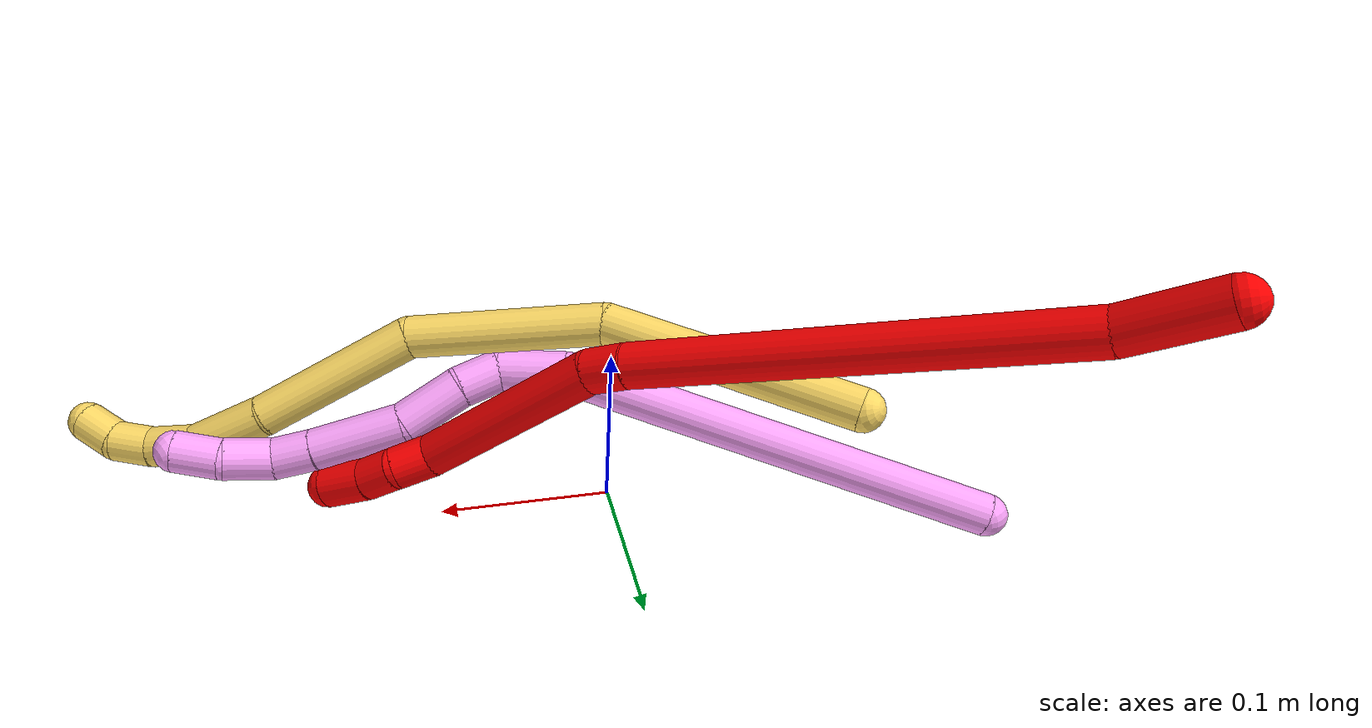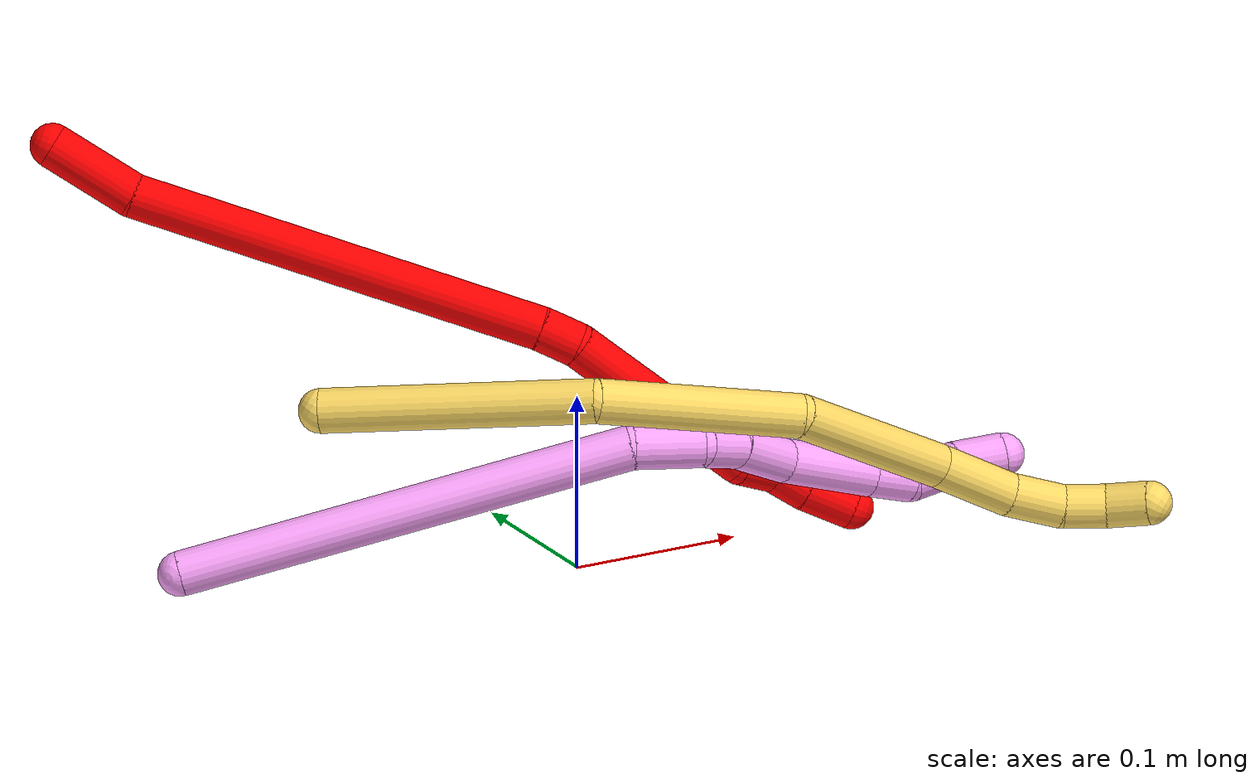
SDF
<sdf version="1.7">
 <world name="default">
  <model name="2">
   <static>0</static>
   <link name="2">
    <collision name="collision-cylinder-e_1_1_4">
     <pose>0.001575 0.00493 -0.025423 -2.95006 0.060754 -0.612724</pose>
     <geometry><cylinder><radius>0.0125</radius><length>0.051888</length></cylinder></geometry>
     <surface>
      <friction><ode><mu>1.16</mu><mu2>1.16</mu2><slip1>0</slip1><slip2>0</slip2></ode></friction>
      <contact><ode><kp>1e+06</kp><kd>1</kd><max_vel>0</max_vel><min_depth>0.001</min_depth></ode></contact>
     </surface>
    </collision>
    <visual name="visual-cylinder-e_1_1_4">
     <pose>0.001575 0.00493 -0.025423 -2.95006 0.060754 -0.612724</pose>
     <geometry><cylinder><radius>0.0125</radius><length>0.051888</length></cylinder></geometry>
     <material><ambient>1 0 0 1</ambient></material>
    </visual>
    <collision name="collision-cylinder-e_2_4_5">
     <pose>-0.008923 0.011453 -0.168391 -3.12804 -0.102345 2.87845</pose>
     <geometry><cylinder><radius>0.0125</radius><length>0.23635</length></cylinder></geometry>
     <surface>
      <friction><ode><mu>1.16</mu><mu2>1.16</mu2><slip1>0</slip1><slip2>0</slip2></ode></friction>
      <contact><ode><kp>1e+06</kp><kd>1</kd><max_vel>0</max_vel><min_depth>0.001</min_depth></ode></contact>
     </surface>
    </collision>
    <visual name="visual-cylinder-e_2_4_5">
     <pose>-0.008923 0.011453 -0.168391 -3.12804 -0.102345 2.87845</pose>
     <geometry><cylinder><radius>0.0125</radius><length>0.23635</length></cylinder></geometry>
     <material><ambient>1 0 0 1</ambient></material>
    </visual>
    <collision name="collision-cylinder-e_3_5_6">
     <pose>-0.021373 0.014119 -0.297284 -3.04737 -0.033042 0.67415</pose>
     <geometry><cylinder><radius>0.0125</radius><length>0.022807</length></cylinder></geometry>
     <surface>
      <friction><ode><mu>1.16</mu><mu2>1.16</mu2><slip1>0</slip1><slip2>0</slip2></ode></friction>
      <contact><ode><kp>1e+06</kp><kd>1</kd><max_vel>0</max_vel><min_depth>0.001</min_depth></ode></contact>
     </surface>
    </collision>
    <visual name="visual-cylinder-e_3_5_6">
     <pose>-0.021373 0.014119 -0.297284 -3.04737 -0.033042 0.67415</pose>
     <geometry><cylinder><radius>0.0125</radius><length>0.022807</length></cylinder></geometry>
     <material><ambient>1 0 0 1</ambient></material>
    </visual>
    <collision name="collision-cylinder-e_4_6_7">
     <pose>-0.006941 0.022004 -0.364514 -3.02028 0.257228 -2.26357</pose>
     <geometry><cylinder><radius>0.0125</radius><length>0.116425</length></cylinder></geometry>
     <surface>
      <friction><ode><mu>1.16</mu><mu2>1.16</mu2><slip1>0</slip1><slip2>0</slip2></ode></friction>
      <contact><ode><kp>1e+06</kp><kd>1</kd><max_vel>0</max_vel><min_depth>0.001</min_depth></ode></contact>
     </surface>
    </collision>
    <visual name="visual-cylinder-e_4_6_7">
     <pose>-0.006941 0.022004 -0.364514 -3.02028 0.257228 -2.26357</pose>
     <geometry><cylinder><radius>0.0125</radius><length>0.116425</length></cylinder></geometry>
     <material><ambient>1 0 0 1</ambient></material>
    </visual>
    <collision name="collision-cylinder-e_5_7_8">
     <pose>0.010179 0.025332 -0.431047 2.8254 0.20332 1.13843</pose>
     <geometry><cylinder><radius>0.0125</radius><length>0.022881</length></cylinder></geometry>
     <surface>
      <friction><ode><mu>1.16</mu><mu2>1.16</mu2><slip1>0</slip1><slip2>0</slip2></ode></friction>
      <contact><ode><kp>1e+06</kp><kd>1</kd><max_vel>0</max_vel><min_depth>0.001</min_depth></ode></contact>
     </surface>
    </collision>
    <visual name="visual-cylinder-e_5_7_8">
     <pose>0.010179 0.025332 -0.431047 2.8254 0.20332 1.13843</pose>
     <geometry><cylinder><radius>0.0125</radius><length>0.022881</length></cylinder></geometry>
     <material><ambient>1 0 0 1</ambient></material>
    </visual>
    <collision name="collision-cylinder-e_6_8_9">
     <pose>0.014208 0.022586 -0.452225 -3.0716 0.161458 -2.32478</pose>
     <geometry><cylinder><radius>0.0125</radius><length>0.021388</length></cylinder></geometry>
     <surface>
      <friction><ode><mu>1.16</mu><mu2>1.16</mu2><slip1>0</slip1><slip2>0</slip2></ode></friction>
      <contact><ode><kp>1e+06</kp><kd>1</kd><max_vel>0</max_vel><min_depth>0.001</min_depth></ode></contact>
     </surface>
    </collision>
    <visual name="visual-cylinder-e_6_8_9">
     <pose>0.014208 0.022586 -0.452225 -3.0716 0.161458 -2.32478</pose>
     <geometry><cylinder><radius>0.0125</radius><length>0.021388</length></cylinder></geometry>
     <material><ambient>1 0 0 1</ambient></material>
    </visual>
    <collision name="collision-cylinder-e_7_9_2">
     <pose>0.016367 0.023273 -0.476878 3.13794 0.031109 2.90801</pose>
     <geometry><cylinder><radius>0.0125</radius><length>0.028261</length></cylinder></geometry>
     <surface>
      <friction><ode><mu>1.16</mu><mu2>1.16</mu2><slip1>0</slip1><slip2>0</slip2></ode></friction>
      <contact><ode><kp>1e+06</kp><kd>1</kd><max_vel>0</max_vel><min_depth>0.001</min_depth></ode></contact>
     </surface>
    </collision>
    <visual name="visual-cylinder-e_7_9_2">
     <pose>0.016367 0.023273 -0.476878 3.13794 0.031109 2.90801</pose>
     <geometry><cylinder><radius>0.0125</radius><length>0.028261</length></cylinder></geometry>
     <material><ambient>1 0 0 1</ambient></material>
    </visual>
    <collision name="collision-sphere-2">
     <pose>0.016806 0.023221 -0.491001 0 -0 0</pose>
     <geometry><sphere><radius>0.0125</radius></sphere></geometry>
     <surface>
      <friction><ode><mu>1.16</mu><mu2>1.16</mu2><slip1>0</slip1><slip2>0</slip2></ode></friction>
      <contact><ode><kp>1e+06</kp><kd>1</kd><max_vel>0</max_vel><min_depth>0.001</min_depth></ode></contact>
     </surface>
    </collision>
    <visual name="visual-sphere-2">
     <pose>0.016806 0.023221 -0.491001 0 -0 0</pose>
     <geometry><sphere><radius>0.0125</radius></sphere></geometry>
     <material><ambient>1 0 0 1</ambient></material>
    </visual>
    <collision name="collision-sphere-9">
     <pose>0.015927 0.023325 -0.462754 0 -0 0</pose>
     <geometry><sphere><radius>0.0125</radius></sphere></geometry>
     <surface>
      <friction><ode><mu>1.16</mu><mu2>1.16</mu2><slip1>0</slip1><slip2>0</slip2></ode></friction>
      <contact><ode><kp>1e+06</kp><kd>1</kd><max_vel>0</max_vel><min_depth>0.001</min_depth></ode></contact>
     </surface>
    </collision>
    <visual name="visual-sphere-9">
     <pose>0.015927 0.023325 -0.462754 0 -0 0</pose>
     <geometry><sphere><radius>0.0125</radius></sphere></geometry>
     <material><ambient>1 0 0 1</ambient></material>
    </visual>
    <collision name="collision-sphere-4">
     <pose>0.00315 0.009859 -0.050845 0 -0 0</pose>
     <geometry><sphere><radius>0.0125</radius></sphere></geometry>
     <surface>
      <friction><ode><mu>1.16</mu><mu2>1.16</mu2><slip1>0</slip1><slip2>0</slip2></ode></friction>
      <contact><ode><kp>1e+06</kp><kd>1</kd><max_vel>0</max_vel><min_depth>0.001</min_depth></ode></contact>
     </surface>
    </collision>
    <visual name="visual-sphere-4">
     <pose>0.00315 0.009859 -0.050845 0 -0 0</pose>
     <geometry><sphere><radius>0.0125</radius></sphere></geometry>
     <material><ambient>1 0 0 1</ambient></material>
    </visual>
    <collision name="collision-sphere-1">
     <geometry><sphere><radius>0.0125</radius></sphere></geometry>
     <surface>
      <friction><ode><mu>1.16</mu><mu2>1.16</mu2><slip1>0</slip1><slip2>0</slip2></ode></friction>
      <contact><ode><kp>1e+06</kp><kd>1</kd><max_vel>0</max_vel><min_depth>0.001</min_depth></ode></contact>
     </surface>
    </collision>
    <visual name="visual-sphere-1">
     <geometry><sphere><radius>0.0125</radius></sphere></geometry>
     <material><ambient>1 0 0 1</ambient></material>
    </visual>
    <collision name="collision-sphere-8">
     <pose>0.012489 0.021848 -0.441696 0 -0 0</pose>
     <geometry><sphere><radius>0.0125</radius></sphere></geometry>
     <surface>
      <friction><ode><mu>1.16</mu><mu2>1.16</mu2><slip1>0</slip1><slip2>0</slip2></ode></friction>
      <contact><ode><kp>1e+06</kp><kd>1</kd><max_vel>0</max_vel><min_depth>0.001</min_depth></ode></contact>
     </surface>
    </collision>
    <visual name="visual-sphere-8">
     <pose>0.012489 0.021848 -0.441696 0 -0 0</pose>
     <geometry><sphere><radius>0.0125</radius></sphere></geometry>
     <material><ambient>1 0 0 1</ambient></material>
    </visual>
    <collision name="collision-sphere-5">
     <pose>-0.020997 0.013047 -0.285937 0 -0 0</pose>
     <geometry><sphere><radius>0.0125</radius></sphere></geometry>
     <surface>
      <friction><ode><mu>1.16</mu><mu2>1.16</mu2><slip1>0</slip1><slip2>0</slip2></ode></friction>
      <contact><ode><kp>1e+06</kp><kd>1</kd><max_vel>0</max_vel><min_depth>0.001</min_depth></ode></contact>
     </surface>
    </collision>
    <visual name="visual-sphere-5">
     <pose>-0.020997 0.013047 -0.285937 0 -0 0</pose>
     <geometry><sphere><radius>0.0125</radius></sphere></geometry>
     <material><ambient>1 0 0 1</ambient></material>
    </visual>
    <collision name="collision-sphere-6">
     <pose>-0.02175 0.015191 -0.30863 0 -0 0</pose>
     <geometry><sphere><radius>0.0125</radius></sphere></geometry>
     <surface>
      <friction><ode><mu>1.16</mu><mu2>1.16</mu2><slip1>0</slip1><slip2>0</slip2></ode></friction>
      <contact><ode><kp>1e+06</kp><kd>1</kd><max_vel>0</max_vel><min_depth>0.001</min_depth></ode></contact>
     </surface>
    </collision>
    <visual name="visual-sphere-6">
     <pose>-0.02175 0.015191 -0.30863 0 -0 0</pose>
     <geometry><sphere><radius>0.0125</radius></sphere></geometry>
     <material><ambient>1 0 0 1</ambient></material>
    </visual>
    <collision name="collision-sphere-7">
     <pose>0.007869 0.028816 -0.420398 0 -0 0</pose>
     <geometry><sphere><radius>0.0125</radius></sphere></geometry>
     <surface>
      <friction><ode><mu>1.16</mu><mu2>1.16</mu2><slip1>0</slip1><slip2>0</slip2></ode></friction>
      <contact><ode><kp>1e+06</kp><kd>1</kd><max_vel>0</max_vel><min_depth>0.001</min_depth></ode></contact>
     </surface>
    </collision>
    <visual name="visual-sphere-7">
     <pose>0.007869 0.028816 -0.420398 0 -0 0</pose>
     <geometry><sphere><radius>0.0125</radius></sphere></geometry>
     <material><ambient>1 0 0 1</ambient></material>
    </visual>
    <inertial>
     <pose>-0.004647 0.015134 -0.246698 0 -0 0</pose>
     <mass>0.5</mass>
     <inertia><ixx>-0.000959</ixx><ixy>0</ixy><ixz>0</ixz><iyy>0.001334</iyy><iyz>0</iyz><izz>6e-06</izz></inertia>
    </inertial>
   </link>
   <pose>-0.226764 0.185387 0.227986 -0.951174 0.840828 1.59629</pose>
  </model>
  <model name="4">
   <static>0</static>
   <link name="4">
    <collision name="collision-cylinder-e_1_1_4">
     <pose>0.079052 -0.067173 0.075465 0.727329 0.663949 0.260915</pose>
     <geometry><cylinder><radius>0.0125</radius><length>0.256566</length></cylinder></geometry>
     <surface>
      <friction><ode><mu>1.16</mu><mu2>1.16</mu2><slip1>0</slip1><slip2>0</slip2></ode></friction>
      <contact><ode><kp>1e+06</kp><kd>1</kd><max_vel>0</max_vel><min_depth>0.001</min_depth></ode></contact>
     </surface>
    </collision>
    <visual name="visual-cylinder-e_1_1_4">
     <pose>0.079052 -0.067173 0.075465 0.727329 0.663949 0.260915</pose>
     <geometry><cylinder><radius>0.0125</radius><length>0.256566</length></cylinder></geometry>
     <material><ambient>1 0.65098 0.996078 1</ambient></material>
    </visual>
    <collision name="collision-cylinder-e_2_4_5">
     <pose>0.17161 -0.139218 0.164559 0.343323 0.750873 0.136447</pose>
     <geometry><cylinder><radius>0.0125</radius><length>0.039591</length></cylinder></geometry>
     <surface>
      <friction><ode><mu>1.16</mu><mu2>1.16</mu2><slip1>0</slip1><slip2>0</slip2></ode></friction>
      <contact><ode><kp>1e+06</kp><kd>1</kd><max_vel>0</max_vel><min_depth>0.001</min_depth></ode></contact>
     </surface>
    </collision>
    <visual name="visual-cylinder-e_2_4_5">
     <pose>0.17161 -0.139218 0.164559 0.343323 0.750873 0.136447</pose>
     <geometry><cylinder><radius>0.0125</radius><length>0.039591</length></cylinder></geometry>
     <material><ambient>1 0.65098 0.996078 1</ambient></material>
    </visual>
    <collision name="collision-cylinder-e_3_5_6">
     <pose>0.189829 -0.143136 0.18993 -0.081044 0.380511 -0.015616</pose>
     <geometry><cylinder><radius>0.0125</radius><length>0.025379</length></cylinder></geometry>
     <surface>
      <friction><ode><mu>1.16</mu><mu2>1.16</mu2><slip1>0</slip1><slip2>0</slip2></ode></friction>
      <contact><ode><kp>1e+06</kp><kd>1</kd><max_vel>0</max_vel><min_depth>0.001</min_depth></ode></contact>
     </surface>
    </collision>
    <visual name="visual-cylinder-e_3_5_6">
     <pose>0.189829 -0.143136 0.18993 -0.081044 0.380511 -0.015616</pose>
     <geometry><cylinder><radius>0.0125</radius><length>0.025379</length></cylinder></geometry>
     <material><ambient>1 0.65098 0.996078 1</ambient></material>
    </visual>
    <collision name="collision-cylinder-e_4_6_7">
     <pose>0.202052 -0.137038 0.218936 -0.289593 0.39503 -0.058346</pose>
     <geometry><cylinder><radius>0.0125</radius><length>0.039032</length></cylinder></geometry>
     <surface>
      <friction><ode><mu>1.16</mu><mu2>1.16</mu2><slip1>0</slip1><slip2>0</slip2></ode></friction>
      <contact><ode><kp>1e+06</kp><kd>1</kd><max_vel>0</max_vel><min_depth>0.001</min_depth></ode></contact>
     </surface>
    </collision>
    <visual name="visual-cylinder-e_4_6_7">
     <pose>0.202052 -0.137038 0.218936 -0.289593 0.39503 -0.058346</pose>
     <geometry><cylinder><radius>0.0125</radius><length>0.039032</length></cylinder></geometry>
     <material><ambient>1 0.65098 0.996078 1</ambient></material>
    </visual>
    <collision name="collision-cylinder-e_5_7_8">
     <pose>0.226168 -0.130706 0.258539 -0.053152 0.638524 -0.017574</pose>
     <geometry><cylinder><radius>0.0125</radius><length>0.05572</length></cylinder></geometry>
     <surface>
      <friction><ode><mu>1.16</mu><mu2>1.16</mu2><slip1>0</slip1><slip2>0</slip2></ode></friction>
      <contact><ode><kp>1e+06</kp><kd>1</kd><max_vel>0</max_vel><min_depth>0.001</min_depth></ode></contact>
     </surface>
    </collision>
    <visual name="visual-cylinder-e_5_7_8">
     <pose>0.226168 -0.130706 0.258539 -0.053152 0.638524 -0.017574</pose>
     <geometry><cylinder><radius>0.0125</radius><length>0.05572</length></cylinder></geometry>
     <material><ambient>1 0.65098 0.996078 1</ambient></material>
    </visual>
    <collision name="collision-cylinder-e_6_8_9">
     <pose>0.250729 -0.129599 0.290788 0.00821 0.676444 0.002888</pose>
     <geometry><cylinder><radius>0.0125</radius><length>0.025417</length></cylinder></geometry>
     <surface>
      <friction><ode><mu>1.16</mu><mu2>1.16</mu2><slip1>0</slip1><slip2>0</slip2></ode></friction>
      <contact><ode><kp>1e+06</kp><kd>1</kd><max_vel>0</max_vel><min_depth>0.001</min_depth></ode></contact>
     </surface>
    </collision>
    <visual name="visual-cylinder-e_6_8_9">
     <pose>0.250729 -0.129599 0.290788 0.00821 0.676444 0.002888</pose>
     <geometry><cylinder><radius>0.0125</radius><length>0.025417</length></cylinder></geometry>
     <material><ambient>1 0.65098 0.996078 1</ambient></material>
    </visual>
    <collision name="collision-cylinder-e_7_9_10">
     <pose>0.264315 -0.134815 0.313702 0.376044 0.382819 0.073708</pose>
     <geometry><cylinder><radius>0.0125</radius><length>0.030145</length></cylinder></geometry>
     <surface>
      <friction><ode><mu>1.16</mu><mu2>1.16</mu2><slip1>0</slip1><slip2>0</slip2></ode></friction>
      <contact><ode><kp>1e+06</kp><kd>1</kd><max_vel>0</max_vel><min_depth>0.001</min_depth></ode></contact>
     </surface>
    </collision>
    <visual name="visual-cylinder-e_7_9_10">
     <pose>0.264315 -0.134815 0.313702 0.376044 0.382819 0.073708</pose>
     <geometry><cylinder><radius>0.0125</radius><length>0.030145</length></cylinder></geometry>
     <material><ambient>1 0.65098 0.996078 1</ambient></material>
    </visual>
    <collision name="collision-cylinder-e_8_10_2">
     <pose>0.278635 -0.145416 0.336335 0.516364 0.665489 0.182022</pose>
     <geometry><cylinder><radius>0.0125</radius><length>0.028149</length></cylinder></geometry>
     <surface>
      <friction><ode><mu>1.16</mu><mu2>1.16</mu2><slip1>0</slip1><slip2>0</slip2></ode></friction>
      <contact><ode><kp>1e+06</kp><kd>1</kd><max_vel>0</max_vel><min_depth>0.001</min_depth></ode></contact>
     </surface>
    </collision>
    <visual name="visual-cylinder-e_8_10_2">
     <pose>0.278635 -0.145416 0.336335 0.516364 0.665489 0.182022</pose>
     <geometry><cylinder><radius>0.0125</radius><length>0.028149</length></cylinder></geometry>
     <material><ambient>1 0.65098 0.996078 1</ambient></material>
    </visual>
    <collision name="collision-sphere-2">
     <pose>0.287325 -0.150882 0.345962 0 -0 0</pose>
     <geometry><sphere><radius>0.0125</radius></sphere></geometry>
     <surface>
      <friction><ode><mu>1.16</mu><mu2>1.16</mu2><slip1>0</slip1><slip2>0</slip2></ode></friction>
      <contact><ode><kp>1e+06</kp><kd>1</kd><max_vel>0</max_vel><min_depth>0.001</min_depth></ode></contact>
     </surface>
    </collision>
    <visual name="visual-sphere-2">
     <pose>0.287325 -0.150882 0.345962 0 -0 0</pose>
     <geometry><sphere><radius>0.0125</radius></sphere></geometry>
     <material><ambient>1 0.65098 0.996078 1</ambient></material>
    </visual>
    <collision name="collision-sphere-10">
     <pose>0.269945 -0.13995 0.326707 0 -0 0</pose>
     <geometry><sphere><radius>0.0125</radius></sphere></geometry>
     <surface>
      <friction><ode><mu>1.16</mu><mu2>1.16</mu2><slip1>0</slip1><slip2>0</slip2></ode></friction>
      <contact><ode><kp>1e+06</kp><kd>1</kd><max_vel>0</max_vel><min_depth>0.001</min_depth></ode></contact>
     </surface>
    </collision>
    <visual name="visual-sphere-10">
     <pose>0.269945 -0.13995 0.326707 0 -0 0</pose>
     <geometry><sphere><radius>0.0125</radius></sphere></geometry>
     <material><ambient>1 0.65098 0.996078 1</ambient></material>
    </visual>
    <collision name="collision-sphere-9">
     <pose>0.258684 -0.12968 0.300698 0 -0 0</pose>
     <geometry><sphere><radius>0.0125</radius></sphere></geometry>
     <surface>
      <friction><ode><mu>1.16</mu><mu2>1.16</mu2><slip1>0</slip1><slip2>0</slip2></ode></friction>
      <contact><ode><kp>1e+06</kp><kd>1</kd><max_vel>0</max_vel><min_depth>0.001</min_depth></ode></contact>
     </surface>
    </collision>
    <visual name="visual-sphere-9">
     <pose>0.258684 -0.12968 0.300698 0 -0 0</pose>
     <geometry><sphere><radius>0.0125</radius></sphere></geometry>
     <material><ambient>1 0.65098 0.996078 1</ambient></material>
    </visual>
    <collision name="collision-sphere-4">
     <pose>0.158104 -0.134347 0.150931 0 -0 0</pose>
     <geometry><sphere><radius>0.0125</radius></sphere></geometry>
     <surface>
      <friction><ode><mu>1.16</mu><mu2>1.16</mu2><slip1>0</slip1><slip2>0</slip2></ode></friction>
      <contact><ode><kp>1e+06</kp><kd>1</kd><max_vel>0</max_vel><min_depth>0.001</min_depth></ode></contact>
     </surface>
    </collision>
    <visual name="visual-sphere-4">
     <pose>0.158104 -0.134347 0.150931 0 -0 0</pose>
     <geometry><sphere><radius>0.0125</radius></sphere></geometry>
     <material><ambient>1 0.65098 0.996078 1</ambient></material>
    </visual>
    <collision name="collision-sphere-1">
     <geometry><sphere><radius>0.0125</radius></sphere></geometry>
     <surface>
      <friction><ode><mu>1.16</mu><mu2>1.16</mu2><slip1>0</slip1><slip2>0</slip2></ode></friction>
      <contact><ode><kp>1e+06</kp><kd>1</kd><max_vel>0</max_vel><min_depth>0.001</min_depth></ode></contact>
     </surface>
    </collision>
    <visual name="visual-sphere-1">
     <geometry><sphere><radius>0.0125</radius></sphere></geometry>
     <material><ambient>1 0.65098 0.996078 1</ambient></material>
    </visual>
    <collision name="collision-sphere-8">
     <pose>0.242773 -0.129518 0.280878 0 -0 0</pose>
     <geometry><sphere><radius>0.0125</radius></sphere></geometry>
     <surface>
      <friction><ode><mu>1.16</mu><mu2>1.16</mu2><slip1>0</slip1><slip2>0</slip2></ode></friction>
      <contact><ode><kp>1e+06</kp><kd>1</kd><max_vel>0</max_vel><min_depth>0.001</min_depth></ode></contact>
     </surface>
    </collision>
    <visual name="visual-sphere-8">
     <pose>0.242773 -0.129518 0.280878 0 -0 0</pose>
     <geometry><sphere><radius>0.0125</radius></sphere></geometry>
     <material><ambient>1 0.65098 0.996078 1</ambient></material>
    </visual>
    <collision name="collision-sphere-5">
     <pose>0.185116 -0.14409 0.178187 0 -0 0</pose>
     <geometry><sphere><radius>0.0125</radius></sphere></geometry>
     <surface>
      <friction><ode><mu>1.16</mu><mu2>1.16</mu2><slip1>0</slip1><slip2>0</slip2></ode></friction>
      <contact><ode><kp>1e+06</kp><kd>1</kd><max_vel>0</max_vel><min_depth>0.001</min_depth></ode></contact>
     </surface>
    </collision>
    <visual name="visual-sphere-5">
     <pose>0.185116 -0.14409 0.178187 0 -0 0</pose>
     <geometry><sphere><radius>0.0125</radius></sphere></geometry>
     <material><ambient>1 0.65098 0.996078 1</ambient></material>
    </visual>
    <collision name="collision-sphere-6">
     <pose>0.194542 -0.142182 0.201673 0 -0 0</pose>
     <geometry><sphere><radius>0.0125</radius></sphere></geometry>
     <surface>
      <friction><ode><mu>1.16</mu><mu2>1.16</mu2><slip1>0</slip1><slip2>0</slip2></ode></friction>
      <contact><ode><kp>1e+06</kp><kd>1</kd><max_vel>0</max_vel><min_depth>0.001</min_depth></ode></contact>
     </surface>
    </collision>
    <visual name="visual-sphere-6">
     <pose>0.194542 -0.142182 0.201673 0 -0 0</pose>
     <geometry><sphere><radius>0.0125</radius></sphere></geometry>
     <material><ambient>1 0.65098 0.996078 1</ambient></material>
    </visual>
    <collision name="collision-sphere-7">
     <pose>0.209563 -0.131895 0.236199 0 -0 0</pose>
     <geometry><sphere><radius>0.0125</radius></sphere></geometry>
     <surface>
      <friction><ode><mu>1.16</mu><mu2>1.16</mu2><slip1>0</slip1><slip2>0</slip2></ode></friction>
      <contact><ode><kp>1e+06</kp><kd>1</kd><max_vel>0</max_vel><min_depth>0.001</min_depth></ode></contact>
     </surface>
    </collision>
    <visual name="visual-sphere-7">
     <pose>0.209563 -0.131895 0.236199 0 -0 0</pose>
     <geometry><sphere><radius>0.0125</radius></sphere></geometry>
     <material><ambient>1 0.65098 0.996078 1</ambient></material>
    </visual>
    <inertial>
     <pose>0.149133 -0.100924 0.159927 0 -0 0</pose>
     <mass>0.5</mass>
     <inertia>
      <ixx>0.001423</ixx>
      <ixy>0</ixy>
      <ixz>0</ixz>
      <iyy>0.00149</iyy>
      <iyz>0</iyz>
      <izz>-0.000125</izz>
     </inertia>
    </inertial>
   </link>
   <pose>-0.209079 0.070414 0.011494 -1.62484 0.355037 -1.07868</pose>
  </model>
  <model name="5">
   <static>0</static>
   <link name="5">
    <collision name="collision-cylinder-e_1_1_4">
     <pose>0.03434 0.021793 0.064517 -0.325757 0.467066 -0.078142</pose>
     <geometry><cylinder><radius>0.0125</radius><length>0.152533</length></cylinder></geometry>
     <surface>
      <friction><ode><mu>1.16</mu><mu2>1.16</mu2><slip1>0</slip1><slip2>0</slip2></ode></friction>
      <contact><ode><kp>1e+06</kp><kd>1</kd><max_vel>0</max_vel><min_depth>0.001</min_depth></ode></contact>
     </surface>
    </collision>
    <visual name="visual-cylinder-e_1_1_4">
     <pose>0.03434 0.021793 0.064517 -0.325757 0.467066 -0.078142</pose>
     <geometry><cylinder><radius>0.0125</radius><length>0.152533</length></cylinder></geometry>
     <material><ambient>1 0.858824 0.4 1</ambient></material>
    </visual>
    <collision name="collision-cylinder-e_2_4_5">
     <pose>0.097595 0.036773 0.179018 0.135474 0.520454 0.036123</pose>
     <geometry><cylinder><radius>0.0125</radius><length>0.116291</length></cylinder></geometry>
     <surface>
      <friction><ode><mu>1.16</mu><mu2>1.16</mu2><slip1>0</slip1><slip2>0</slip2></ode></friction>
      <contact><ode><kp>1e+06</kp><kd>1</kd><max_vel>0</max_vel><min_depth>0.001</min_depth></ode></contact>
     </surface>
    </collision>
    <visual name="visual-cylinder-e_2_4_5">
     <pose>0.097595 0.036773 0.179018 0.135474 0.520454 0.036123</pose>
     <geometry><cylinder><radius>0.0125</radius><length>0.116291</length></cylinder></geometry>
     <material><ambient>1 0.858824 0.4 1</ambient></material>
    </visual>
    <collision name="collision-cylinder-e_3_5_6">
     <pose>0.144597 0.004566 0.268463 0.571808 0.367895 0.109273</pose>
     <geometry><cylinder><radius>0.0125</radius><length>0.10058</length></cylinder></geometry>
     <surface>
      <friction><ode><mu>1.16</mu><mu2>1.16</mu2><slip1>0</slip1><slip2>0</slip2></ode></friction>
      <contact><ode><kp>1e+06</kp><kd>1</kd><max_vel>0</max_vel><min_depth>0.001</min_depth></ode></contact>
     </surface>
    </collision>
    <visual name="visual-cylinder-e_3_5_6">
     <pose>0.144597 0.004566 0.268463 0.571808 0.367895 0.109273</pose>
     <geometry><cylinder><radius>0.0125</radius><length>0.10058</length></cylinder></geometry>
     <material><ambient>1 0.858824 0.4 1</ambient></material>
    </visual>
    <collision name="collision-cylinder-e_4_6_7">
     <pose>0.169669 -0.030143 0.329307 0.410826 0.290988 0.06104</pose>
     <geometry><cylinder><radius>0.0125</radius><length>0.048697</length></cylinder></geometry>
     <surface>
      <friction><ode><mu>1.16</mu><mu2>1.16</mu2><slip1>0</slip1><slip2>0</slip2></ode></friction>
      <contact><ode><kp>1e+06</kp><kd>1</kd><max_vel>0</max_vel><min_depth>0.001</min_depth></ode></contact>
     </surface>
    </collision>
    <visual name="visual-cylinder-e_4_6_7">
     <pose>0.169669 -0.030143 0.329307 0.410826 0.290988 0.06104</pose>
     <geometry><cylinder><radius>0.0125</radius><length>0.048697</length></cylinder></geometry>
     <material><ambient>1 0.858824 0.4 1</ambient></material>
    </visual>
    <collision name="collision-cylinder-e_5_7_8">
     <pose>0.182043 -0.040548 0.365451 0.07369 0.349177 0.013003</pose>
     <geometry><cylinder><radius>0.0125</radius><length>0.031501</length></cylinder></geometry>
     <surface>
      <friction><ode><mu>1.16</mu><mu2>1.16</mu2><slip1>0</slip1><slip2>0</slip2></ode></friction>
      <contact><ode><kp>1e+06</kp><kd>1</kd><max_vel>0</max_vel><min_depth>0.001</min_depth></ode></contact>
     </surface>
    </collision>
    <visual name="visual-cylinder-e_5_7_8">
     <pose>0.182043 -0.040548 0.365451 0.07369 0.349177 0.013003</pose>
     <geometry><cylinder><radius>0.0125</radius><length>0.031501</length></cylinder></geometry>
     <material><ambient>1 0.858824 0.4 1</ambient></material>
    </visual>
    <collision name="collision-cylinder-e_6_8_9">
     <pose>0.193871 -0.040611 0.390982 -0.094986 0.536834 -0.026145</pose>
     <geometry><cylinder><radius>0.0125</radius><length>0.025182</length></cylinder></geometry>
     <surface>
      <friction><ode><mu>1.16</mu><mu2>1.16</mu2><slip1>0</slip1><slip2>0</slip2></ode></friction>
      <contact><ode><kp>1e+06</kp><kd>1</kd><max_vel>0</max_vel><min_depth>0.001</min_depth></ode></contact>
     </surface>
    </collision>
    <visual name="visual-cylinder-e_6_8_9">
     <pose>0.193871 -0.040611 0.390982 -0.094986 0.536834 -0.026145</pose>
     <geometry><cylinder><radius>0.0125</radius><length>0.025182</length></cylinder></geometry>
     <material><ambient>1 0.858824 0.4 1</ambient></material>
    </visual>
    <collision name="collision-cylinder-e_7_9_2">
     <pose>0.205425 -0.034055 0.411863 -0.500514 0.417749 -0.108258</pose>
     <geometry><cylinder><radius>0.0125</radius><length>0.025215</length></cylinder></geometry>
     <surface>
      <friction><ode><mu>1.16</mu><mu2>1.16</mu2><slip1>0</slip1><slip2>0</slip2></ode></friction>
      <contact><ode><kp>1e+06</kp><kd>1</kd><max_vel>0</max_vel><min_depth>0.001</min_depth></ode></contact>
     </surface>
    </collision>
    <visual name="visual-cylinder-e_7_9_2">
     <pose>0.205425 -0.034055 0.411863 -0.500514 0.417749 -0.108258</pose>
     <geometry><cylinder><radius>0.0125</radius><length>0.025215</length></cylinder></geometry>
     <material><ambient>1 0.858824 0.4 1</ambient></material>
    </visual>
    <collision name="collision-sphere-2">
     <pose>0.21054 -0.028526 0.421973 0 -0 0</pose>
     <geometry><sphere><radius>0.0125</radius></sphere></geometry>
     <surface>
      <friction><ode><mu>1.16</mu><mu2>1.16</mu2><slip1>0</slip1><slip2>0</slip2></ode></friction>
      <contact><ode><kp>1e+06</kp><kd>1</kd><max_vel>0</max_vel><min_depth>0.001</min_depth></ode></contact>
     </surface>
    </collision>
    <visual name="visual-sphere-2">
     <pose>0.21054 -0.028526 0.421973 0 -0 0</pose>
     <geometry><sphere><radius>0.0125</radius></sphere></geometry>
     <material><ambient>1 0.858824 0.4 1</ambient></material>
    </visual>
    <collision name="collision-sphere-9">
     <pose>0.200311 -0.039585 0.401754 0 -0 0</pose>
     <geometry><sphere><radius>0.0125</radius></sphere></geometry>
     <surface>
      <friction><ode><mu>1.16</mu><mu2>1.16</mu2><slip1>0</slip1><slip2>0</slip2></ode></friction>
      <contact><ode><kp>1e+06</kp><kd>1</kd><max_vel>0</max_vel><min_depth>0.001</min_depth></ode></contact>
     </surface>
    </collision>
    <visual name="visual-sphere-9">
     <pose>0.200311 -0.039585 0.401754 0 -0 0</pose>
     <geometry><sphere><radius>0.0125</radius></sphere></geometry>
     <material><ambient>1 0.858824 0.4 1</ambient></material>
    </visual>
    <collision name="collision-sphere-4">
     <pose>0.068681 0.043586 0.129033 0 -0 0</pose>
     <geometry><sphere><radius>0.0125</radius></sphere></geometry>
     <surface>
      <friction><ode><mu>1.16</mu><mu2>1.16</mu2><slip1>0</slip1><slip2>0</slip2></ode></friction>
      <contact><ode><kp>1e+06</kp><kd>1</kd><max_vel>0</max_vel><min_depth>0.001</min_depth></ode></contact>
     </surface>
    </collision>
    <visual name="visual-sphere-4">
     <pose>0.068681 0.043586 0.129033 0 -0 0</pose>
     <geometry><sphere><radius>0.0125</radius></sphere></geometry>
     <material><ambient>1 0.858824 0.4 1</ambient></material>
    </visual>
    <collision name="collision-sphere-1">
     <geometry><sphere><radius>0.0125</radius></sphere></geometry>
     <surface>
      <friction><ode><mu>1.16</mu><mu2>1.16</mu2><slip1>0</slip1><slip2>0</slip2></ode></friction>
      <contact><ode><kp>1e+06</kp><kd>1</kd><max_vel>0</max_vel><min_depth>0.001</min_depth></ode></contact>
     </surface>
    </collision>
    <visual name="visual-sphere-1">
     <geometry><sphere><radius>0.0125</radius></sphere></geometry>
     <material><ambient>1 0.858824 0.4 1</ambient></material>
    </visual>
    <collision name="collision-sphere-8">
     <pose>0.187432 -0.041637 0.380211 0 -0 0</pose>
     <geometry><sphere><radius>0.0125</radius></sphere></geometry>
     <surface>
      <friction><ode><mu>1.16</mu><mu2>1.16</mu2><slip1>0</slip1><slip2>0</slip2></ode></friction>
      <contact><ode><kp>1e+06</kp><kd>1</kd><max_vel>0</max_vel><min_depth>0.001</min_depth></ode></contact>
     </surface>
    </collision>
    <visual name="visual-sphere-8">
     <pose>0.187432 -0.041637 0.380211 0 -0 0</pose>
     <geometry><sphere><radius>0.0125</radius></sphere></geometry>
     <material><ambient>1 0.858824 0.4 1</ambient></material>
    </visual>
    <collision name="collision-sphere-5">
     <pose>0.12651 0.02996 0.229002 0 -0 0</pose>
     <geometry><sphere><radius>0.0125</radius></sphere></geometry>
     <surface>
      <friction><ode><mu>1.16</mu><mu2>1.16</mu2><slip1>0</slip1><slip2>0</slip2></ode></friction>
      <contact><ode><kp>1e+06</kp><kd>1</kd><max_vel>0</max_vel><min_depth>0.001</min_depth></ode></contact>
     </surface>
    </collision>
    <visual name="visual-sphere-5">
     <pose>0.12651 0.02996 0.229002 0 -0 0</pose>
     <geometry><sphere><radius>0.0125</radius></sphere></geometry>
     <material><ambient>1 0.858824 0.4 1</ambient></material>
    </visual>
    <collision name="collision-sphere-6">
     <pose>0.162683 -0.020828 0.307923 0 -0 0</pose>
     <geometry><sphere><radius>0.0125</radius></sphere></geometry>
     <surface>
      <friction><ode><mu>1.16</mu><mu2>1.16</mu2><slip1>0</slip1><slip2>0</slip2></ode></friction>
      <contact><ode><kp>1e+06</kp><kd>1</kd><max_vel>0</max_vel><min_depth>0.001</min_depth></ode></contact>
     </surface>
    </collision>
    <visual name="visual-sphere-6">
     <pose>0.162683 -0.020828 0.307923 0 -0 0</pose>
     <geometry><sphere><radius>0.0125</radius></sphere></geometry>
     <material><ambient>1 0.858824 0.4 1</ambient></material>
    </visual>
    <collision name="collision-sphere-7">
     <pose>0.176655 -0.039458 0.350691 0 -0 0</pose>
     <geometry><sphere><radius>0.0125</radius></sphere></geometry>
     <surface>
      <friction><ode><mu>1.16</mu><mu2>1.16</mu2><slip1>0</slip1><slip2>0</slip2></ode></friction>
      <contact><ode><kp>1e+06</kp><kd>1</kd><max_vel>0</max_vel><min_depth>0.001</min_depth></ode></contact>
     </surface>
    </collision>
    <visual name="visual-sphere-7">
     <pose>0.176655 -0.039458 0.350691 0 -0 0</pose>
     <geometry><sphere><radius>0.0125</radius></sphere></geometry>
     <material><ambient>1 0.858824 0.4 1</ambient></material>
    </visual>
    <inertial>
     <pose>0.11038 0.006866 0.210881 0 -0 0</pose>
     <mass>0.5</mass>
     <inertia>
      <ixx>0.000496</ixx>
      <ixy>0</ixy>
      <ixz>0</ixz>
      <iyy>0.000508</iyy>
      <iyz>0</iyz>
      <izz>-0.000231</izz>
     </inertia>
    </inertial>
   </link>
   <pose>-0.125093 0.063678 0.093699 2.19814 -0.682987 0.402585</pose>
  </model>
 </world>
</sdf>
